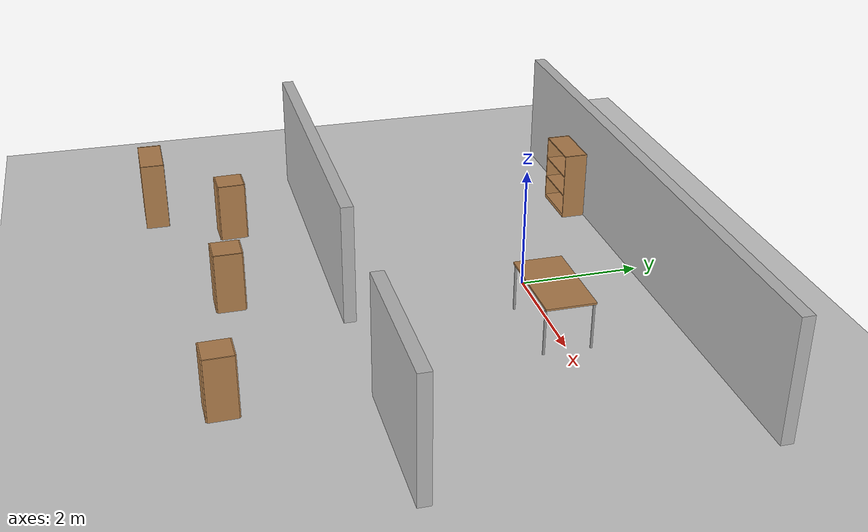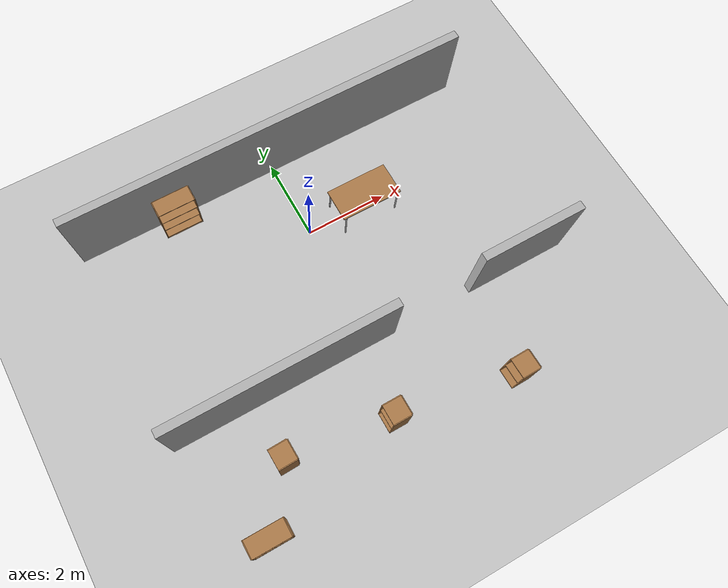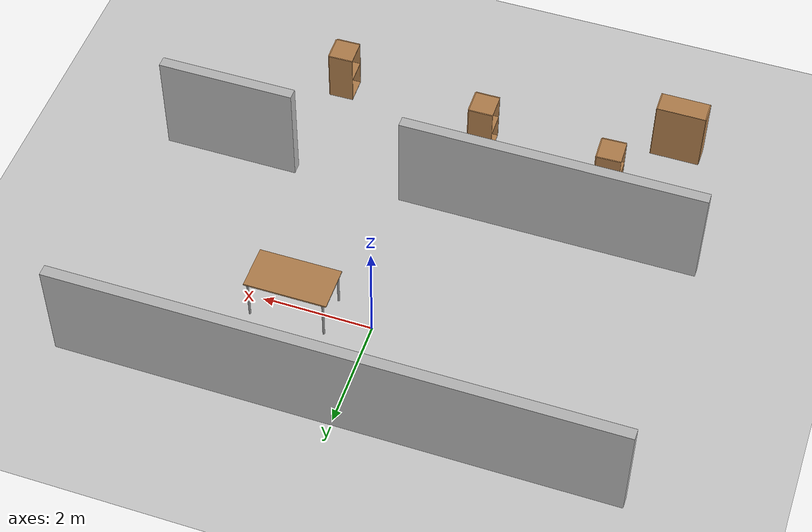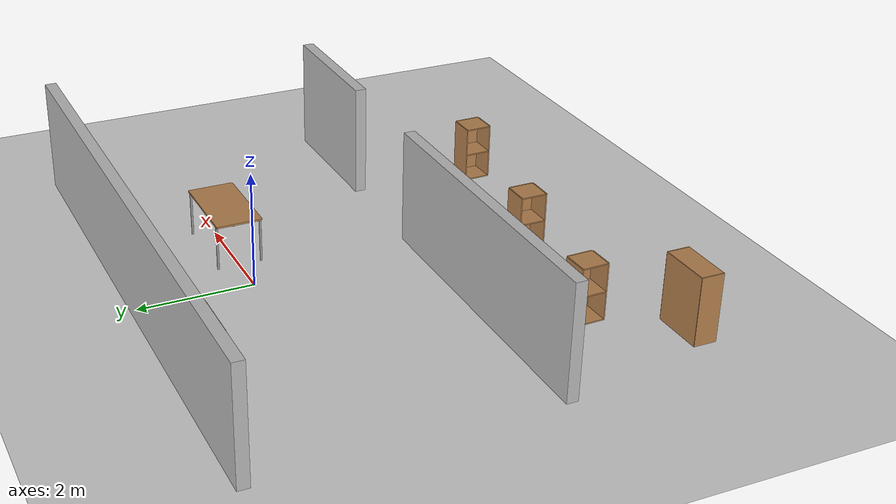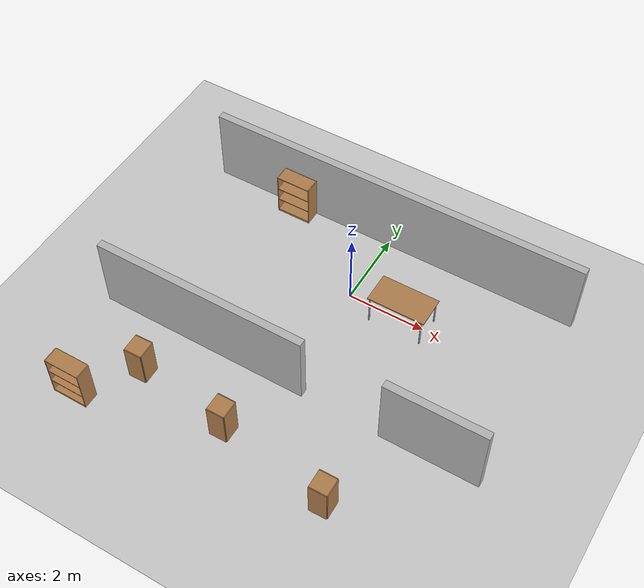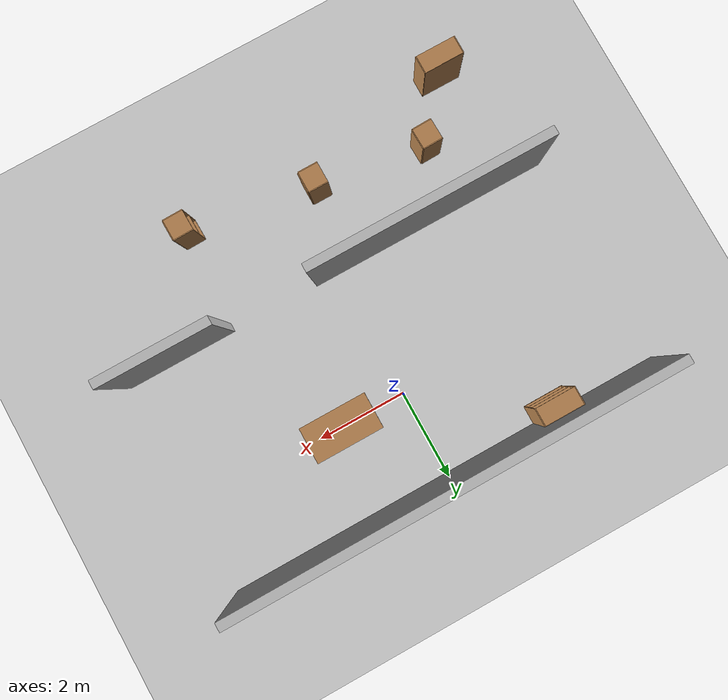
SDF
<sdf version="1.6">
 <world name="default">
  <model name="ground_plane">
   <static>1</static>
   <link name="link">
    <collision name="collision">
     <geometry><plane><normal>0 0 1</normal><size>100 100</size></plane></geometry>
     <surface><friction><ode><mu>100</mu><mu2>50</mu2></ode></friction></surface>
    </collision>
    <visual name="visual">
     <cast_shadows>0</cast_shadows>
     <geometry><plane><normal>0 0 1</normal><size>100 100</size></plane></geometry>
     <material>
      <script><uri>file://media/materials/scripts/gazebo.material</uri><name>Gazebo/Grey</name></script>
     </material>
    </visual>
    <velocity_decay><linear>0</linear><angular>0</angular></velocity_decay>
   </link>
  </model>
  <model name="wall_2_model">
   <pose>0 2 1 0 -0 0</pose>
   <static>1</static>
   <link name="wall_2_body">
    <inertial>
     <mass>1</mass>
     <inertia><ixx>1</ixx><ixy>0</ixy><ixz>0</ixz><iyy>1</iyy><iyz>0</iyz><izz>1</izz></inertia>
    </inertial>
    <collision name="collision"><geometry><box><size>10 0.2 2</size></box></geometry></collision>
    <visual name="visual"><geometry><box><size>10 0.2 2</size></box></geometry></visual>
    <velocity_decay><linear>0</linear><angular>0</angular></velocity_decay>
   </link>
  </model>
  <model name="wall_5_model">
   <pose>-2.25 -3 1 0 -0 0</pose>
   <static>1</static>
   <link name="wall_5_body">
    <inertial>
     <mass>1</mass>
     <inertia><ixx>1</ixx><ixy>0</ixy><ixz>0</ixz><iyy>1</iyy><iyz>0</iyz><izz>1</izz></inertia>
    </inertial>
    <collision name="collision"><geometry><box><size>5.5 0.2 2</size></box></geometry></collision>
    <visual name="visual"><geometry><box><size>5.5 0.2 2</size></box></geometry></visual>
    <velocity_decay><linear>0</linear><angular>0</angular></velocity_decay>
   </link>
  </model>
  <model name="wall_6_model">
   <pose>3.75 -3 1 0 -0 0</pose>
   <static>1</static>
   <link name="wall_6_body">
    <inertial>
     <mass>1</mass>
     <inertia><ixx>1</ixx><ixy>0</ixy><ixz>0</ixz><iyy>1</iyy><iyz>0</iyz><izz>1</izz></inertia>
    </inertial>
    <collision name="collision"><geometry><box><size>2.5 0.2 2</size></box></geometry></collision>
    <visual name="visual"><geometry><box><size>2.5 0.2 2</size></box></geometry></visual>
    <velocity_decay><linear>0</linear><angular>0</angular></velocity_decay>
   </link>
  </model>
  <model name="cabinet_0">
   <static>0</static>
   <link name="cabinet_bottom_plate">
    <inertial>
     <pose>0 0 -1 0 -0 0</pose>
     <inertia><ixx>2.05</ixx><ixy>0</ixy><ixz>0</ixz><iyy>2.05</iyy><iyz>0</iyz><izz>2.05</izz></inertia>
     <mass>25</mass>
    </inertial>
    <collision name="cabinet_bottom_plate_geom">
     <pose>0 0 0.01 0 -0 0</pose>
     <geometry><box><size>0.45 0.45 0.02</size></box></geometry>
    </collision>
    <visual name="cabinet_bottom_plate_geom_visual">
     <pose>0 0 0.01 0 -0 0</pose>
     <geometry><box><size>0.45 0.45 0.02</size></box></geometry>
     <material>
      <script><uri>file://media/materials/scripts/gazebo.material</uri><name>Gazebo/Wood</name></script>
     </material>
    </visual>
    <collision name="cabinet_bottom_plate_geom_cabinet_back_plate">
     <pose>0.235 0 0.51 0 -0 0</pose>
     <geometry><box><size>0.02 0.45 1.02</size></box></geometry>
    </collision>
    <visual name="cabinet_bottom_plate_geom_cabinet_back_plate_visual">
     <pose>0.235 0 0.51 0 -0 0</pose>
     <geometry><box><size>0.02 0.45 1.02</size></box></geometry>
     <material>
      <script><uri>file://media/materials/scripts/gazebo.material</uri><name>Gazebo/Wood</name></script>
     </material>
    </visual>
    <collision name="cabinet_bottom_plate_geom_cabinet_left_plate">
     <pose>0 0.235 0.51 0 -0 0</pose>
     <geometry><box><size>0.45 0.02 1.02</size></box></geometry>
    </collision>
    <visual name="cabinet_bottom_plate_geom_cabinet_left_plate_visual">
     <pose>0 0.235 0.51 0 -0 0</pose>
     <geometry><box><size>0.45 0.02 1.02</size></box></geometry>
     <material>
      <script><uri>file://media/materials/scripts/gazebo.material</uri><name>Gazebo/Wood</name></script>
     </material>
    </visual>
    <collision name="cabinet_bottom_plate_geom_cabinet_middle_plate">
     <pose>0 0 0.51 0 -0 0</pose>
     <geometry><box><size>0.45 0.45 0.02</size></box></geometry>
    </collision>
    <visual name="cabinet_bottom_plate_geom_cabinet_middle_plate_visual">
     <pose>0 0 0.51 0 -0 0</pose>
     <geometry><box><size>0.45 0.45 0.02</size></box></geometry>
     <material>
      <script><uri>file://media/materials/scripts/gazebo.material</uri><name>Gazebo/Wood</name></script>
     </material>
    </visual>
    <collision name="cabinet_bottom_plate_geom_cabinet_right_plate">
     <pose>0 -0.235 0.51 0 -0 0</pose>
     <geometry><box><size>0.45 0.02 1.02</size></box></geometry>
    </collision>
    <visual name="cabinet_bottom_plate_geom_cabinet_right_plate_visual">
     <pose>0 -0.235 0.51 0 -0 0</pose>
     <geometry><box><size>0.45 0.02 1.02</size></box></geometry>
     <material>
      <script><uri>file://media/materials/scripts/gazebo.material</uri><name>Gazebo/Wood</name></script>
     </material>
    </visual>
    <collision name="cabinet_bottom_plate_geom_cabinet_top_plate">
     <pose>0 0 1.01 0 -0 0</pose>
     <geometry><box><size>0.45 0.45 0.02</size></box></geometry>
    </collision>
    <visual name="cabinet_bottom_plate_geom_cabinet_top_plate_visual">
     <pose>0 0 1.01 0 -0 0</pose>
     <geometry><box><size>0.45 0.45 0.02</size></box></geometry>
     <material>
      <script><uri>file://media/materials/scripts/gazebo.material</uri><name>Gazebo/Wood</name></script>
     </material>
    </visual>
    <velocity_decay><linear>0</linear><angular>0</angular></velocity_decay>
   </link>
   <pose>2.33745 -5.20859 -0 0 1e-06 0.019099</pose>
  </model>
  <model name="bookshelf_1">
   <static>0</static>
   <link name="link">
    <inertial>
     <mass>1</mass>
     <inertia><ixx>1</ixx><ixy>0</ixy><ixz>0</ixz><iyy>1</iyy><iyz>0</iyz><izz>1</izz></inertia>
    </inertial>
    <collision name="back">
     <pose>0 0.005 0.6 0 -0 0</pose>
     <geometry><box><size>0.9 0.01 1.2</size></box></geometry>
    </collision>
    <visual name="visual1">
     <pose>0 0.005 0.6 0 -0 0</pose>
     <geometry><box><size>0.9 0.01 1.2</size></box></geometry>
     <material>
      <script><uri>file://media/materials/scripts/gazebo.material</uri><name>Gazebo/Wood</name></script>
     </material>
    </visual>
    <collision name="left_side">
     <pose>0.45 -0.195 0.6 0 -0 0</pose>
     <geometry><box><size>0.02 0.4 1.2</size></box></geometry>
    </collision>
    <visual name="visual2">
     <pose>0.45 -0.195 0.6 0 -0 0</pose>
     <geometry><box><size>0.02 0.4 1.2</size></box></geometry>
     <material>
      <script><uri>file://media/materials/scripts/gazebo.material</uri><name>Gazebo/Wood</name></script>
     </material>
    </visual>
    <collision name="right_side">
     <pose>-0.45 -0.195 0.6 0 -0 0</pose>
     <geometry><box><size>0.02 0.4 1.2</size></box></geometry>
    </collision>
    <visual name="visual3">
     <pose>-0.45 -0.195 0.6 0 -0 0</pose>
     <geometry><box><size>0.02 0.4 1.2</size></box></geometry>
     <material>
      <script><uri>file://media/materials/scripts/gazebo.material</uri><name>Gazebo/Wood</name></script>
     </material>
    </visual>
    <collision name="bottom">
     <pose>0 -0.195 0.03 0 -0 0</pose>
     <geometry><box><size>0.88 0.4 0.06</size></box></geometry>
    </collision>
    <visual name="visual4">
     <pose>0 -0.195 0.03 0 -0 0</pose>
     <geometry><box><size>0.88 0.4 0.06</size></box></geometry>
     <material>
      <script><uri>file://media/materials/scripts/gazebo.material</uri><name>Gazebo/Wood</name></script>
     </material>
    </visual>
    <collision name="top">
     <pose>0 -0.195 1.19 0 -0 0</pose>
     <geometry><box><size>0.88 0.4 0.02</size></box></geometry>
    </collision>
    <visual name="visual5">
     <pose>0 -0.195 1.19 0 -0 0</pose>
     <geometry><box><size>0.88 0.4 0.02</size></box></geometry>
     <material>
      <script><uri>file://media/materials/scripts/gazebo.material</uri><name>Gazebo/Wood</name></script>
     </material>
    </visual>
    <collision name="low_shelf">
     <pose>0 -0.195 0.43 0 -0 0</pose>
     <geometry><box><size>0.88 0.4 0.02</size></box></geometry>
    </collision>
    <visual name="visual6">
     <pose>0 -0.195 0.43 0 -0 0</pose>
     <geometry><box><size>0.88 0.4 0.02</size></box></geometry>
     <material>
      <script><uri>file://media/materials/scripts/gazebo.material</uri><name>Gazebo/Wood</name></script>
     </material>
    </visual>
    <collision name="high_shelf">
     <pose>0 -0.195 0.8 0 -0 0</pose>
     <geometry><box><size>0.88 0.4 0.02</size></box></geometry>
    </collision>
    <visual name="visual7">
     <pose>0 -0.195 0.8 0 -0 0</pose>
     <geometry><box><size>0.88 0.4 0.02</size></box></geometry>
     <material>
      <script><uri>file://media/materials/scripts/gazebo.material</uri><name>Gazebo/Wood</name></script>
     </material>
    </visual>
    <velocity_decay><linear>0</linear><angular>0</angular></velocity_decay>
   </link>
   <pose>-2.55993 1.88966 0 -2.4e-05 -0 0.000206</pose>
  </model>
  <model name="cabinet_1">
   <static>0</static>
   <link name="cabinet_bottom_plate">
    <inertial>
     <pose>0 0 -1 0 -0 0</pose>
     <inertia><ixx>2.05</ixx><ixy>0</ixy><ixz>0</ixz><iyy>2.05</iyy><iyz>0</iyz><izz>2.05</izz></inertia>
     <mass>25</mass>
    </inertial>
    <collision name="cabinet_bottom_plate_geom">
     <pose>0 0 0.01 0 -0 0</pose>
     <geometry><box><size>0.45 0.45 0.02</size></box></geometry>
    </collision>
    <visual name="cabinet_bottom_plate_geom_visual">
     <pose>0 0 0.01 0 -0 0</pose>
     <geometry><box><size>0.45 0.45 0.02</size></box></geometry>
     <material>
      <script><uri>file://media/materials/scripts/gazebo.material</uri><name>Gazebo/Wood</name></script>
     </material>
    </visual>
    <collision name="cabinet_bottom_plate_geom_cabinet_back_plate">
     <pose>0.235 0 0.51 0 -0 0</pose>
     <geometry><box><size>0.02 0.45 1.02</size></box></geometry>
    </collision>
    <visual name="cabinet_bottom_plate_geom_cabinet_back_plate_visual">
     <pose>0.235 0 0.51 0 -0 0</pose>
     <geometry><box><size>0.02 0.45 1.02</size></box></geometry>
     <material>
      <script><uri>file://media/materials/scripts/gazebo.material</uri><name>Gazebo/Wood</name></script>
     </material>
    </visual>
    <collision name="cabinet_bottom_plate_geom_cabinet_left_plate">
     <pose>0 0.235 0.51 0 -0 0</pose>
     <geometry><box><size>0.45 0.02 1.02</size></box></geometry>
    </collision>
    <visual name="cabinet_bottom_plate_geom_cabinet_left_plate_visual">
     <pose>0 0.235 0.51 0 -0 0</pose>
     <geometry><box><size>0.45 0.02 1.02</size></box></geometry>
     <material>
      <script><uri>file://media/materials/scripts/gazebo.material</uri><name>Gazebo/Wood</name></script>
     </material>
    </visual>
    <collision name="cabinet_bottom_plate_geom_cabinet_middle_plate">
     <pose>0 0 0.51 0 -0 0</pose>
     <geometry><box><size>0.45 0.45 0.02</size></box></geometry>
    </collision>
    <visual name="cabinet_bottom_plate_geom_cabinet_middle_plate_visual">
     <pose>0 0 0.51 0 -0 0</pose>
     <geometry><box><size>0.45 0.45 0.02</size></box></geometry>
     <material>
      <script><uri>file://media/materials/scripts/gazebo.material</uri><name>Gazebo/Wood</name></script>
     </material>
    </visual>
    <collision name="cabinet_bottom_plate_geom_cabinet_right_plate">
     <pose>0 -0.235 0.51 0 -0 0</pose>
     <geometry><box><size>0.45 0.02 1.02</size></box></geometry>
    </collision>
    <visual name="cabinet_bottom_plate_geom_cabinet_right_plate_visual">
     <pose>0 -0.235 0.51 0 -0 0</pose>
     <geometry><box><size>0.45 0.02 1.02</size></box></geometry>
     <material>
      <script><uri>file://media/materials/scripts/gazebo.material</uri><name>Gazebo/Wood</name></script>
     </material>
    </visual>
    <collision name="cabinet_bottom_plate_geom_cabinet_top_plate">
     <pose>0 0 1.01 0 -0 0</pose>
     <geometry><box><size>0.45 0.45 0.02</size></box></geometry>
    </collision>
    <visual name="cabinet_bottom_plate_geom_cabinet_top_plate_visual">
     <pose>0 0 1.01 0 -0 0</pose>
     <geometry><box><size>0.45 0.45 0.02</size></box></geometry>
     <material>
      <script><uri>file://media/materials/scripts/gazebo.material</uri><name>Gazebo/Wood</name></script>
     </material>
    </visual>
    <velocity_decay><linear>0</linear><angular>0</angular></velocity_decay>
   </link>
   <pose>-3.00892 -4.40011 -0 1e-06 -0 0.028716</pose>
  </model>
  <model name="cabinet_2">
   <static>0</static>
   <link name="cabinet_bottom_plate">
    <inertial>
     <pose>0 0 -1 0 -0 0</pose>
     <inertia><ixx>2.05</ixx><ixy>0</ixy><ixz>0</ixz><iyy>2.05</iyy><iyz>0</iyz><izz>2.05</izz></inertia>
     <mass>25</mass>
    </inertial>
    <collision name="cabinet_bottom_plate_geom">
     <pose>0 0 0.01 0 -0 0</pose>
     <geometry><box><size>0.45 0.45 0.02</size></box></geometry>
    </collision>
    <visual name="cabinet_bottom_plate_geom_visual">
     <pose>0 0 0.01 0 -0 0</pose>
     <geometry><box><size>0.45 0.45 0.02</size></box></geometry>
     <material>
      <script><uri>file://media/materials/scripts/gazebo.material</uri><name>Gazebo/Wood</name></script>
     </material>
    </visual>
    <collision name="cabinet_bottom_plate_geom_cabinet_back_plate">
     <pose>0.235 0 0.51 0 -0 0</pose>
     <geometry><box><size>0.02 0.45 1.02</size></box></geometry>
    </collision>
    <visual name="cabinet_bottom_plate_geom_cabinet_back_plate_visual">
     <pose>0.235 0 0.51 0 -0 0</pose>
     <geometry><box><size>0.02 0.45 1.02</size></box></geometry>
     <material>
      <script><uri>file://media/materials/scripts/gazebo.material</uri><name>Gazebo/Wood</name></script>
     </material>
    </visual>
    <collision name="cabinet_bottom_plate_geom_cabinet_left_plate">
     <pose>0 0.235 0.51 0 -0 0</pose>
     <geometry><box><size>0.45 0.02 1.02</size></box></geometry>
    </collision>
    <visual name="cabinet_bottom_plate_geom_cabinet_left_plate_visual">
     <pose>0 0.235 0.51 0 -0 0</pose>
     <geometry><box><size>0.45 0.02 1.02</size></box></geometry>
     <material>
      <script><uri>file://media/materials/scripts/gazebo.material</uri><name>Gazebo/Wood</name></script>
     </material>
    </visual>
    <collision name="cabinet_bottom_plate_geom_cabinet_middle_plate">
     <pose>0 0 0.51 0 -0 0</pose>
     <geometry><box><size>0.45 0.45 0.02</size></box></geometry>
    </collision>
    <visual name="cabinet_bottom_plate_geom_cabinet_middle_plate_visual">
     <pose>0 0 0.51 0 -0 0</pose>
     <geometry><box><size>0.45 0.45 0.02</size></box></geometry>
     <material>
      <script><uri>file://media/materials/scripts/gazebo.material</uri><name>Gazebo/Wood</name></script>
     </material>
    </visual>
    <collision name="cabinet_bottom_plate_geom_cabinet_right_plate">
     <pose>0 -0.235 0.51 0 -0 0</pose>
     <geometry><box><size>0.45 0.02 1.02</size></box></geometry>
    </collision>
    <visual name="cabinet_bottom_plate_geom_cabinet_right_plate_visual">
     <pose>0 -0.235 0.51 0 -0 0</pose>
     <geometry><box><size>0.45 0.02 1.02</size></box></geometry>
     <material>
      <script><uri>file://media/materials/scripts/gazebo.material</uri><name>Gazebo/Wood</name></script>
     </material>
    </visual>
    <collision name="cabinet_bottom_plate_geom_cabinet_top_plate">
     <pose>0 0 1.01 0 -0 0</pose>
     <geometry><box><size>0.45 0.45 0.02</size></box></geometry>
    </collision>
    <visual name="cabinet_bottom_plate_geom_cabinet_top_plate_visual">
     <pose>0 0 1.01 0 -0 0</pose>
     <geometry><box><size>0.45 0.45 0.02</size></box></geometry>
     <material>
      <script><uri>file://media/materials/scripts/gazebo.material</uri><name>Gazebo/Wood</name></script>
     </material>
    </visual>
    <velocity_decay><linear>0</linear><angular>0</angular></velocity_decay>
   </link>
   <pose>-0.5289 -4.74427 -0 1e-06 -0 0.003844</pose>
  </model>
  <model name="table_0">
   <static>0</static>
   <link name="link">
    <collision name="surface">
     <pose>0 0 0.9 0 -0 0</pose>
     <geometry><box><size>1.5 0.8 0.03</size></box></geometry>
    </collision>
    <visual name="visual1">
     <pose>0 0 0.9 0 -0 0</pose>
     <geometry><box><size>1.5 0.8 0.03</size></box></geometry>
     <material>
      <script><uri>file://media/materials/scripts/gazebo.material</uri><name>Gazebo/Wood</name></script>
     </material>
    </visual>
    <collision name="front_left_leg">
     <pose>0.68 0.38 0.5 0 -0 0</pose>
     <geometry><cylinder><radius>0.02</radius><length>0.8</length></cylinder></geometry>
    </collision>
    <visual name="front_left_leg">
     <pose>0.68 0.38 0.5 0 -0 0</pose>
     <geometry><cylinder><radius>0.02</radius><length>0.8</length></cylinder></geometry>
     <material>
      <script><uri>file://media/materials/scripts/gazebo.material</uri><name>Gazebo/Grey</name></script>
     </material>
    </visual>
    <collision name="front_right_leg">
     <pose>0.68 -0.38 0.5 0 -0 0</pose>
     <geometry><cylinder><radius>0.02</radius><length>0.8</length></cylinder></geometry>
    </collision>
    <visual name="front_right_leg">
     <pose>0.68 -0.38 0.5 0 -0 0</pose>
     <geometry><cylinder><radius>0.02</radius><length>0.8</length></cylinder></geometry>
     <material>
      <script><uri>file://media/materials/scripts/gazebo.material</uri><name>Gazebo/Grey</name></script>
     </material>
    </visual>
    <collision name="back_right_leg">
     <pose>-0.68 -0.38 0.5 0 -0 0</pose>
     <geometry><cylinder><radius>0.02</radius><length>0.8</length></cylinder></geometry>
    </collision>
    <visual name="back_right_leg">
     <pose>-0.68 -0.38 0.5 0 -0 0</pose>
     <geometry><cylinder><radius>0.02</radius><length>0.8</length></cylinder></geometry>
     <material>
      <script><uri>file://media/materials/scripts/gazebo.material</uri><name>Gazebo/Grey</name></script>
     </material>
    </visual>
    <collision name="back_left_leg">
     <pose>-0.68 0.38 0.5 0 -0 0</pose>
     <geometry><cylinder><radius>0.02</radius><length>0.8</length></cylinder></geometry>
    </collision>
    <visual name="back_left_leg">
     <pose>-0.68 0.38 0.5 0 -0 0</pose>
     <geometry><cylinder><radius>0.02</radius><length>0.8</length></cylinder></geometry>
     <material>
      <script><uri>file://media/materials/scripts/gazebo.material</uri><name>Gazebo/Grey</name></script>
     </material>
    </visual>
    <velocity_decay><linear>0</linear><angular>0</angular></velocity_decay>
    <inertial>
     <inertia><ixx>1</ixx><ixy>0</ixy><ixz>0</ixz><iyy>1</iyy><iyz>0</iyz><izz>1</izz></inertia>
     <mass>1</mass>
    </inertial>
   </link>
   <pose>1.42941 -0.01429 -0.100001 -2e-06 -0 -0.000325</pose>
  </model>
  <model name="bookshelf_6">
   <static>0</static>
   <link name="link">
    <inertial>
     <mass>1</mass>
     <inertia><ixx>1</ixx><ixy>0</ixy><ixz>0</ixz><iyy>1</iyy><iyz>0</iyz><izz>1</izz></inertia>
    </inertial>
    <collision name="back">
     <pose>0 0.005 0.6 0 -0 0</pose>
     <geometry><box><size>0.9 0.01 1.2</size></box></geometry>
    </collision>
    <visual name="visual1">
     <pose>0 0.005 0.6 0 -0 0</pose>
     <geometry><box><size>0.9 0.01 1.2</size></box></geometry>
     <material>
      <script><uri>file://media/materials/scripts/gazebo.material</uri><name>Gazebo/Wood</name></script>
     </material>
    </visual>
    <collision name="left_side">
     <pose>0.45 -0.195 0.6 0 -0 0</pose>
     <geometry><box><size>0.02 0.4 1.2</size></box></geometry>
    </collision>
    <visual name="visual2">
     <pose>0.45 -0.195 0.6 0 -0 0</pose>
     <geometry><box><size>0.02 0.4 1.2</size></box></geometry>
     <material>
      <script><uri>file://media/materials/scripts/gazebo.material</uri><name>Gazebo/Wood</name></script>
     </material>
    </visual>
    <collision name="right_side">
     <pose>-0.45 -0.195 0.6 0 -0 0</pose>
     <geometry><box><size>0.02 0.4 1.2</size></box></geometry>
    </collision>
    <visual name="visual3">
     <pose>-0.45 -0.195 0.6 0 -0 0</pose>
     <geometry><box><size>0.02 0.4 1.2</size></box></geometry>
     <material>
      <script><uri>file://media/materials/scripts/gazebo.material</uri><name>Gazebo/Wood</name></script>
     </material>
    </visual>
    <collision name="bottom">
     <pose>0 -0.195 0.03 0 -0 0</pose>
     <geometry><box><size>0.88 0.4 0.06</size></box></geometry>
    </collision>
    <visual name="visual4">
     <pose>0 -0.195 0.03 0 -0 0</pose>
     <geometry><box><size>0.88 0.4 0.06</size></box></geometry>
     <material>
      <script><uri>file://media/materials/scripts/gazebo.material</uri><name>Gazebo/Wood</name></script>
     </material>
    </visual>
    <collision name="top">
     <pose>0 -0.195 1.19 0 -0 0</pose>
     <geometry><box><size>0.88 0.4 0.02</size></box></geometry>
    </collision>
    <visual name="visual5">
     <pose>0 -0.195 1.19 0 -0 0</pose>
     <geometry><box><size>0.88 0.4 0.02</size></box></geometry>
     <material>
      <script><uri>file://media/materials/scripts/gazebo.material</uri><name>Gazebo/Wood</name></script>
     </material>
    </visual>
    <collision name="low_shelf">
     <pose>0 -0.195 0.43 0 -0 0</pose>
     <geometry><box><size>0.88 0.4 0.02</size></box></geometry>
    </collision>
    <visual name="visual6">
     <pose>0 -0.195 0.43 0 -0 0</pose>
     <geometry><box><size>0.88 0.4 0.02</size></box></geometry>
     <material>
      <script><uri>file://media/materials/scripts/gazebo.material</uri><name>Gazebo/Wood</name></script>
     </material>
    </visual>
    <collision name="high_shelf">
     <pose>0 -0.195 0.8 0 -0 0</pose>
     <geometry><box><size>0.88 0.4 0.02</size></box></geometry>
    </collision>
    <visual name="visual7">
     <pose>0 -0.195 0.8 0 -0 0</pose>
     <geometry><box><size>0.88 0.4 0.02</size></box></geometry>
     <material>
      <script><uri>file://media/materials/scripts/gazebo.material</uri><name>Gazebo/Wood</name></script>
     </material>
    </visual>
    <velocity_decay><linear>0</linear><angular>0</angular></velocity_decay>
   </link>
   <pose>-4 -5.47465 -1e-06 -4.4e-05 -3e-06 0</pose>
  </model>
 </world>
</sdf>
